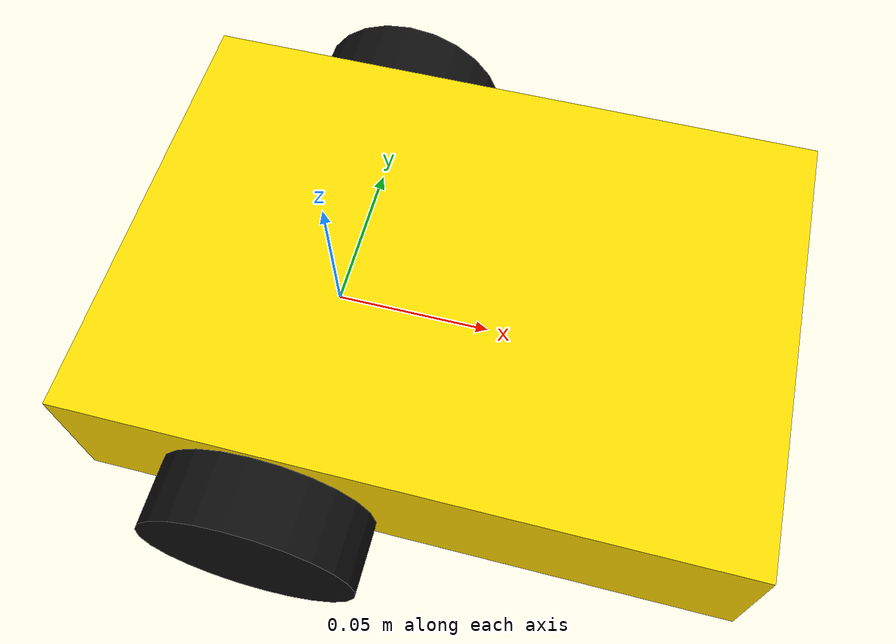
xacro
<?xml version="1.0"?>
<robot xmlns:xacro="http://www.ros.org/wiki/xacro" >

    <xacro:include filename="inertial_macros.xacro"/>

    <!-- ==================== PROPERTIES ==================== -->
    <xacro:property name="chassis_length" value="0.20"/>
    <xacro:property name="chassis_width" value="0.14"/>
    <xacro:property name="chassis_height" value="0.045"/>
    <xacro:property name="chassis_mass" value="0.8"/>

    <xacro:property name="wheel_radius" value="0.033"/>
    <xacro:property name="wheel_thickness" value="0.022"/>
    <xacro:property name="wheel_mass" value="0.05"/>
    <xacro:property name="wheel_offset_x" value="0.06"/>
    <xacro:property name="wheel_offset_y" value="0.08"/>
    <xacro:property name="wheel_offset_z" value="0.01"/>

    <xacro:property name="caster_wheel_radius" value="0.020"/>
    <xacro:property name="caster_wheel_mass" value="0.01"/>
    <xacro:property name="caster_wheel_offset_x" value="0.17"/>
    <xacro:property name="caster_wheel_offset_z"
                    value="${wheel_offset_z - wheel_radius + caster_wheel_radius}"/>

    <!-- ==================== MATERIALS ==================== -->
    <material name="yellow">
        <color rgba="1.0 0.85 0.0 1"/>
    </material>
    <material name="orange">
        <color rgba="1.0 0.55 0.0 1"/>
    </material>
    <material name="blue">
        <color rgba="0.2 0.2 1 1"/>
    </material>
    <material name="black">
        <color rgba="0.05 0.05 0.05 1"/>
    </material>
    <material name="white">
        <color rgba="1 1 1 1"/>
    </material>

    <!-- ==================== BASE LINK ==================== -->
    <link name="base_link"></link>

    <!-- base_footprint (ground projection) -->
    <joint name="base_footprint_joint" type="fixed">
        <parent link="base_link"/>
        <child link="base_footprint"/>
        <origin xyz="0 0 0" rpy="0 0 0"/>
    </joint>
    <link name="base_footprint"></link>

    <!-- ==================== CHASSIS ==================== -->
    <!-- Drive wheels are at the REAR, chassis extends FORWARD -->
    <joint name="chassis_joint" type="fixed">
        <parent link="base_link"/>
        <child link="chassis"/>
        <origin xyz="${-wheel_offset_x} 0 ${-wheel_offset_z}"/>
    </joint>

    <link name="chassis">
        <visual>
            <origin xyz="${chassis_length/2} 0 ${chassis_height/2}"/>
            <geometry>
                <box size="${chassis_length} ${chassis_width} ${chassis_height}"/>
            </geometry>
            <material name="yellow"/>
        </visual>
        <collision>
            <origin xyz="${chassis_length/2} 0 ${chassis_height/2}"/>
            <geometry>
                <box size="${chassis_length} ${chassis_width} ${chassis_height}"/>
            </geometry>
        </collision>
        <xacro:inertial_box mass="${chassis_mass}"
                            x="${chassis_length}" y="${chassis_width}" z="${chassis_height}">
            <origin xyz="${chassis_length/2} 0 ${chassis_height/2}" rpy="0 0 0"/>
        </xacro:inertial_box>
    </link>

    <gazebo reference="chassis">
        <material>Gazebo/Yellow</material>
    </gazebo>

    <!-- ==================== LEFT WHEEL ==================== -->
    <joint name="left_wheel_joint" type="continuous">
        <parent link="base_link"/>
        <child link="left_wheel"/>
        <origin xyz="0 ${wheel_offset_y} 0" rpy="${-pi/2} 0 0"/>
        <axis xyz="0 0 1"/>
    </joint>

    <link name="left_wheel">
        <visual>
            <geometry>
                <cylinder radius="${wheel_radius}" length="${wheel_thickness}"/>
            </geometry>
            <material name="black"/>
        </visual>
        <collision>
            <geometry>
                <sphere radius="${wheel_radius}"/>
            </geometry>
        </collision>
        <xacro:inertial_cylinder mass="${wheel_mass}"
                                 length="${wheel_thickness}" radius="${wheel_radius}">
            <origin xyz="0 0 0" rpy="0 0 0"/>
        </xacro:inertial_cylinder>
    </link>

    <gazebo reference="left_wheel">
        <material>Gazebo/DarkGrey</material>
    </gazebo>

    <!-- ==================== RIGHT WHEEL ==================== -->
    <joint name="right_wheel_joint" type="continuous">
        <parent link="base_link"/>
        <child link="right_wheel"/>
        <origin xyz="0 ${-wheel_offset_y} 0" rpy="${pi/2} 0 0"/>
        <axis xyz="0 0 -1"/>
    </joint>

    <link name="right_wheel">
        <visual>
            <geometry>
                <cylinder radius="${wheel_radius}" length="${wheel_thickness}"/>
            </geometry>
            <material name="black"/>
        </visual>
        <collision>
            <geometry>
                <sphere radius="${wheel_radius}"/>
            </geometry>
        </collision>
        <xacro:inertial_cylinder mass="${wheel_mass}"
                                 length="${wheel_thickness}" radius="${wheel_radius}">
            <origin xyz="0 0 0" rpy="0 0 0"/>
        </xacro:inertial_cylinder>
    </link>

    <gazebo reference="right_wheel">
        <material>Gazebo/DarkGrey</material>
    </gazebo>

    <!-- ==================== CASTER WHEEL (FRONT) ==================== -->
    <joint name="caster_wheel_joint" type="fixed">
        <parent link="chassis"/>
        <child link="caster_wheel"/>
        <origin xyz="${caster_wheel_offset_x} 0 ${caster_wheel_offset_z}"/>
    </joint>

    <link name="caster_wheel">
        <visual>
            <geometry>
                <sphere radius="${caster_wheel_radius}"/>
            </geometry>
            <material name="white"/>
        </visual>
        <collision>
            <geometry>
                <sphere radius="${caster_wheel_radius}"/>
            </geometry>
        </collision>
        <xacro:inertial_sphere mass="${caster_wheel_mass}" radius="${caster_wheel_radius}">
            <origin xyz="0 0 0" rpy="0 0 0"/>
        </xacro:inertial_sphere>
    </link>

    <gazebo reference="caster_wheel">
        <material>Gazebo/White</material>
        <mu1 value="0.001"/>
        <mu2 value="0.001"/>
    </gazebo>

</robot>

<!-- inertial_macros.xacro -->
<robot xmlns:xacro="http://www.ros.org/wiki/xacro" >

    <xacro:macro name="inertial_sphere" params="mass radius *origin">
        <inertial>
            <xacro:insert_block name="origin"/>
            <mass value="${mass}" />
            <inertia ixx="${(2/5) * mass * (radius*radius)}" ixy="0.0" ixz="0.0"
                    iyy="${(2/5) * mass * (radius*radius)}" iyz="0.0"
                    izz="${(2/5) * mass * (radius*radius)}" />
        </inertial>
    </xacro:macro>

    <xacro:macro name="inertial_box" params="mass x y z *origin">
        <inertial>
            <xacro:insert_block name="origin"/>
            <mass value="${mass}" />
            <inertia ixx="${(1/12) * mass * (y*y+z*z)}" ixy="0.0" ixz="0.0"
                    iyy="${(1/12) * mass * (x*x+z*z)}" iyz="0.0"
                    izz="${(1/12) * mass * (x*x+y*y)}" />
        </inertial>
    </xacro:macro>

    <xacro:macro name="inertial_cylinder" params="mass length radius *origin">
        <inertial>
            <xacro:insert_block name="origin"/>
            <mass value="${mass}" />
            <inertia ixx="${(1/12) * mass * (3*radius*radius + length*length)}" ixy="0.0" ixz="0.0"
                    iyy="${(1/12) * mass * (3*radius*radius + length*length)}" iyz="0.0"
                    izz="${(1/2) * mass * (radius*radius)}" />
        </inertial>
    </xacro:macro>

</robot>
